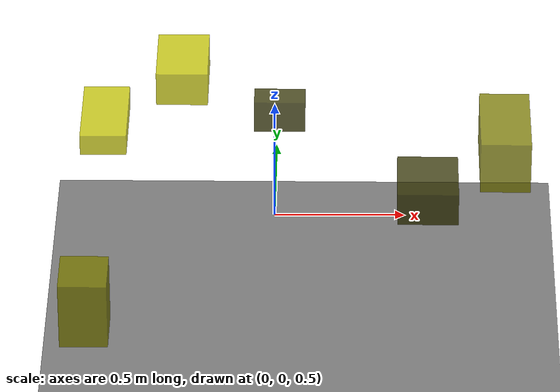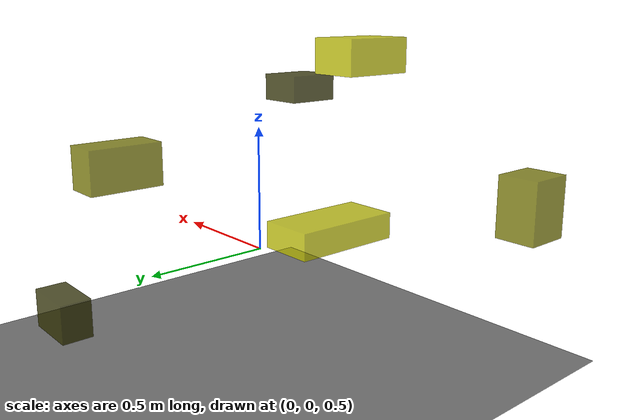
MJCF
<?xml version="1.0"?>
<mujoco model="obstacle_scene">
  <compiler angle="radian" coordinate="local"/>
  <option timestep="0.001" gravity="0 0 -9.81"/>

  <asset>
    <material name="obstacle_mat" rgba="0.8 0.8 0.0 0.8"/>
    <material name="ground_mat" rgba="0.5 0.5 0.5 1"/>
  </asset>

  <worldbody>
    <!-- Ground plane -->
    <geom name="ground" type="plane" size="3 3 0.1" material="ground_mat"/>

    <!-- Obstacles -->
    <body name="obstacle_0" pos="0.572211 -0.695643 1.065555">
      <geom name="obs_0" type="box" size="0.111113 0.129202 0.064465" rgba="0.2 0.2 0.0 0.8"/>
    </body>
    <body name="obstacle_1" pos="0.886016 0.169792 0.725341">
      <geom name="obs_1" type="box" size="0.096252 0.185973 0.107164" rgba="0.5 0.5 0.0 0.8"/>
    </body>
    <body name="obstacle_2" pos="-0.336722 -0.220713 1.288394">
      <geom name="obs_2" type="box" size="0.095232 0.142248 0.065930" rgba="0.8 0.8 0.0 0.8"/>
    </body>
    <body name="obstacle_3" pos="0.005713 0.834515 0.452230">
      <geom name="obs_3" type="box" size="0.102118 0.053500 0.067879" rgba="0.2 0.2 0.0 0.8"/>
    </body>
    <body name="obstacle_4" pos="-0.690148 -0.852518 0.670941">
      <geom name="obs_4" type="box" size="0.089471 0.101507 0.133087" rgba="0.5 0.5 0.0 0.8"/>
    </body>
    <body name="obstacle_5" pos="-0.660957 0.228063 0.780761">
      <geom name="obs_5" type="box" size="0.088816 0.180144 0.042079" rgba="0.8 0.8 0.0 0.8"/>
    </body>
  </worldbody>
</mujoco>
